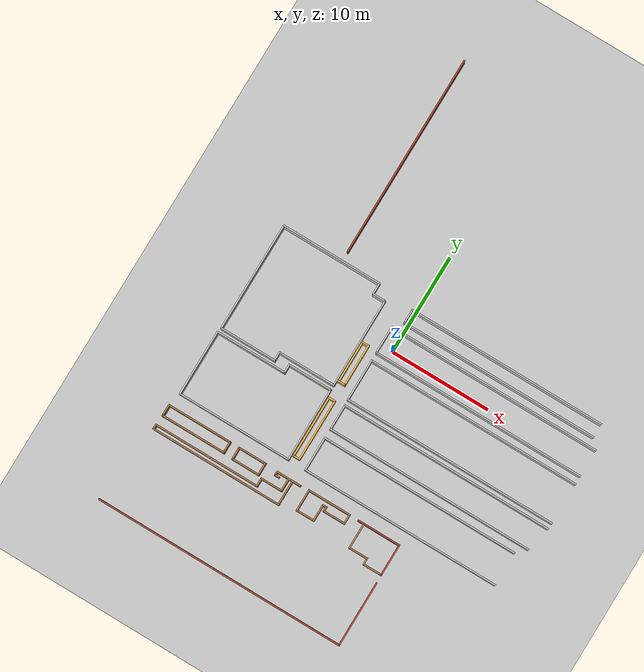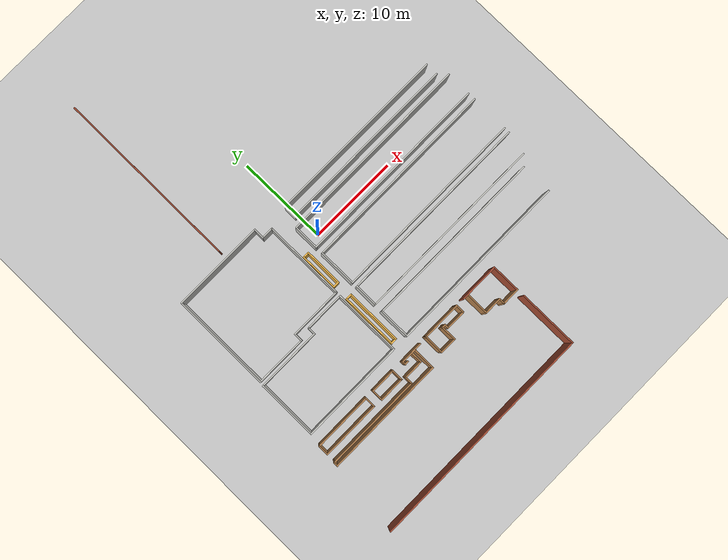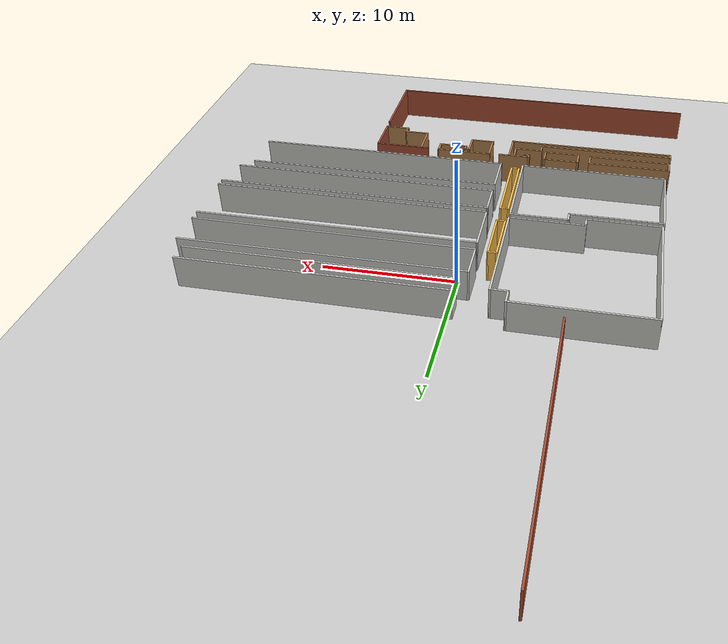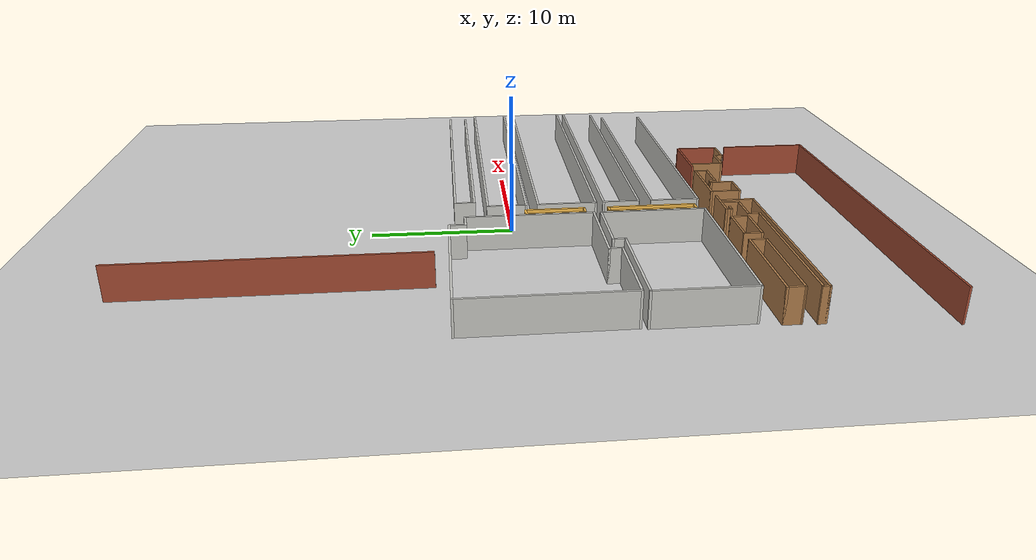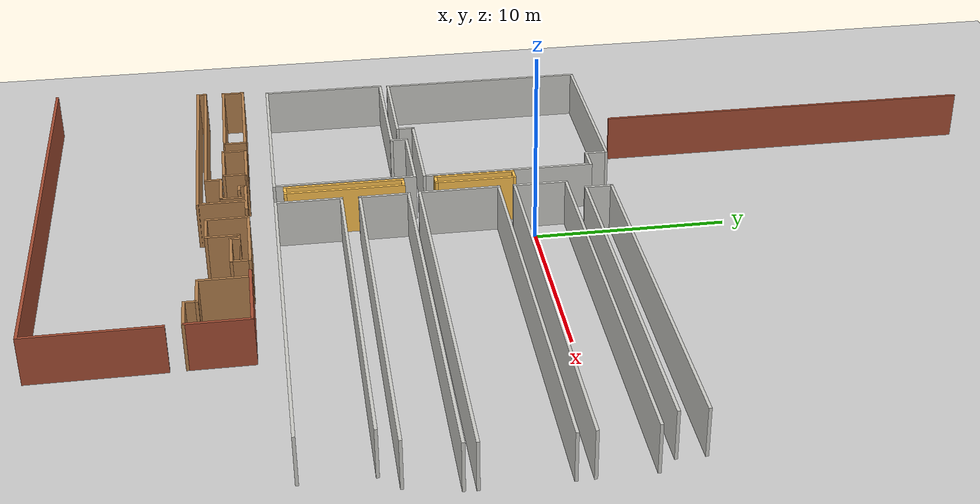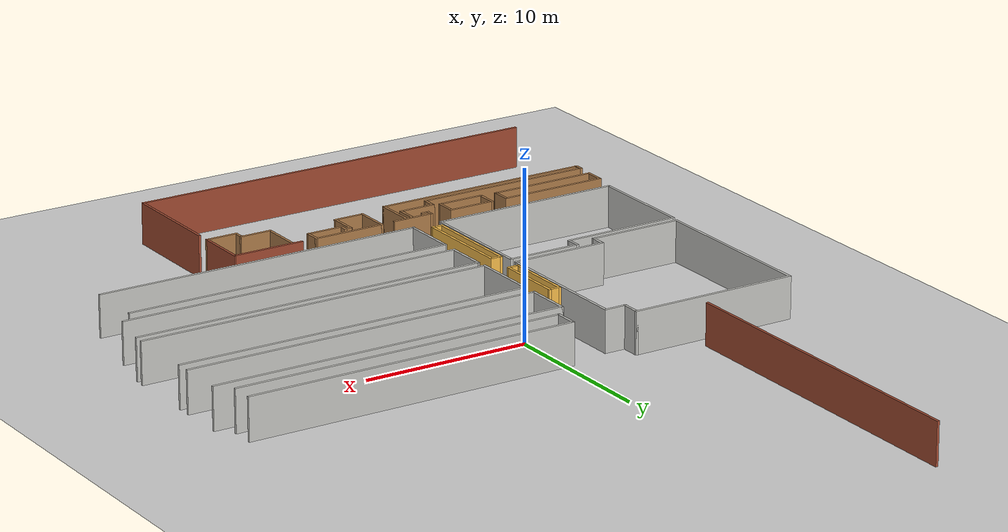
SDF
<sdf version="1.6">
 <world name="default">
  <model name="ground_plane">
   <static>1</static>
   <link name="link">
    <collision name="collision">
     <geometry><plane><normal>0 0 1</normal><size>100 100</size></plane></geometry>
     <surface><friction><ode><mu>100</mu><mu2>50</mu2></ode></friction></surface>
    </collision>
    <visual name="visual">
     <cast_shadows>0</cast_shadows>
     <geometry><plane><normal>0 0 1</normal><size>100 100</size></plane></geometry>
     <material>
      <script><uri>file://media/materials/scripts/gazebo.material</uri><name>Gazebo/Grey</name></script>
     </material>
    </visual>
   </link>
  </model>
  <model name="jeonju-2023">
   <pose>-5.65351 1.61412 0 0 -0 0</pose>
   <link name="Wall_10">
    <collision name="Wall_10_Collision">
     <geometry><box><size>1.239 0.15 2.5</size></box></geometry>
     <pose>0 0 1.25 0 -0 0</pose>
    </collision>
    <visual name="Wall_10_Visual">
     <pose>0 0 1.25 0 -0 0</pose>
     <geometry><box><size>1.239 0.15 2.5</size></box></geometry>
     <material>
      <script><uri>file://media/materials/scripts/gazebo.material</uri><name>Gazebo/Wood</name></script>
      <ambient>1 1 1 1</ambient>
     </material>
    </visual>
    <pose>-2.5755 -16.763 0 0 0 -1.5708</pose>
   </link>
   <link name="Wall_110">
    <collision name="Wall_110_Collision">
     <geometry><box><size>20.25 0.15 2.5</size></box></geometry>
     <pose>0 0 1.25 0 -0 0</pose>
    </collision>
    <visual name="Wall_110_Visual">
     <pose>0 0 1.25 0 -0 0</pose>
     <geometry><box><size>20.25 0.15 2.5</size></box></geometry>
     <material>
      <script><uri>file://media/materials/scripts/gazebo.material</uri><name>Gazebo/Bricks</name></script>
      <ambient>1 1 1 1</ambient>
     </material>
    </visual>
    <pose>-2.4415 13.9915 0 0 0 -1.57229</pose>
   </link>
   <link name="Wall_13">
    <collision name="Wall_13_Collision">
     <geometry><box><size>1.25 0.15 2.5</size></box></geometry>
     <pose>0 0 1.25 0 -0 0</pose>
    </collision>
    <visual name="Wall_13_Visual">
     <pose>0 0 1.25 0 -0 0</pose>
     <geometry><box><size>1.25 0.15 2.5</size></box></geometry>
     <material>
      <script><uri>file://media/materials/scripts/gazebo.material</uri><name>Gazebo/Wood</name></script>
      <ambient>0.760784 0.662745 0.627451 1</ambient>
     </material>
    </visual>
    <pose>-8.9755 -16.7685 0 0 0 -1.5708</pose>
   </link>
   <link name="Wall_15">
    <collision name="Wall_15_Collision">
     <geometry><box><size>1.32513 0.15 2.5</size></box></geometry>
     <pose>0 0 1.25 0 -0 0</pose>
    </collision>
    <visual name="Wall_15_Visual">
     <pose>0 0 1.25 0 -0 0</pose>
     <geometry><box><size>1.32513 0.15 2.5</size></box></geometry>
     <material>
      <script><uri>file://media/materials/scripts/gazebo.material</uri><name>Gazebo/Wood</name></script>
      <ambient>1 1 1 1</ambient>
     </material>
    </visual>
    <pose>-1.6015 -16.807 0 0 -0 1.5708</pose>
   </link>
   <link name="Wall_16">
    <collision name="Wall_16_Collision">
     <geometry><box><size>2.876 0.15 2.5</size></box></geometry>
     <pose>0 0 1.25 0 -0 0</pose>
    </collision>
    <visual name="Wall_16_Visual">
     <pose>0 0 1.25 0 -0 0</pose>
     <geometry><box><size>2.876 0.15 2.5</size></box></geometry>
     <material>
      <script><uri>file://media/materials/scripts/gazebo.material</uri><name>Gazebo/Wood</name></script>
      <ambient>1 1 1 1</ambient>
     </material>
    </visual>
    <pose>-0.238501 -16.2195 0 0 -0 0</pose>
   </link>
   <link name="Wall_17">
    <collision name="Wall_17_Collision">
     <geometry><box><size>1.325 0.15 2.5</size></box></geometry>
     <pose>0 0 1.25 0 -0 0</pose>
    </collision>
    <visual name="Wall_17_Visual">
     <pose>0 0 1.25 0 -0 0</pose>
     <geometry><box><size>1.325 0.15 2.5</size></box></geometry>
     <material>
      <script><uri>file://media/materials/scripts/gazebo.material</uri><name>Gazebo/Wood</name></script>
      <ambient>1 1 1 1</ambient>
     </material>
    </visual>
    <pose>1.1245 -16.807 0 0 0 -1.5708</pose>
   </link>
   <link name="Wall_18">
    <collision name="Wall_18_Collision">
     <geometry><box><size>2.8764 0.15 2.5</size></box></geometry>
     <pose>0 0 1.25 0 -0 0</pose>
    </collision>
    <visual name="Wall_18_Visual">
     <pose>0 0 1.25 0 -0 0</pose>
     <geometry><box><size>2.8764 0.15 2.5</size></box></geometry>
     <material>
      <script><uri>file://media/materials/scripts/gazebo.material</uri><name>Gazebo/Wood</name></script>
      <ambient>1 1 1 1</ambient>
     </material>
    </visual>
    <pose>-0.238501 -17.3945 0 0 -0 3.14159</pose>
   </link>
   <link name="Wall_20">
    <collision name="Wall_20_Collision">
     <geometry><box><size>0.514476 0.15 2.5</size></box></geometry>
     <pose>0 0 1.25 0 -0 0</pose>
    </collision>
    <visual name="Wall_20_Visual">
     <pose>0 0 1.25 0 -0 0</pose>
     <geometry><box><size>0.514476 0.15 2.5</size></box></geometry>
     <material>
      <script><uri>file://media/materials/scripts/gazebo.material</uri><name>Gazebo/Wood</name></script>
      <ambient>1 1 1 1</ambient>
     </material>
    </visual>
    <pose>2.6065 -16.6385 0 0 -0 3.14159</pose>
   </link>
   <link name="Wall_21">
    <collision name="Wall_21_Collision">
     <geometry><box><size>0.489513 0.15 2.5</size></box></geometry>
     <pose>0 0 1.25 0 -0 0</pose>
    </collision>
    <visual name="Wall_21_Visual">
     <pose>0 0 1.25 0 -0 0</pose>
     <geometry><box><size>0.489513 0.15 2.5</size></box></geometry>
     <material>
      <script><uri>file://media/materials/scripts/gazebo.material</uri><name>Gazebo/Wood</name></script>
      <ambient>1 1 1 1</ambient>
     </material>
    </visual>
    <pose>2.4245 -16.469 0 0 -0 1.5708</pose>
   </link>
   <link name="Wall_22">
    <collision name="Wall_22_Collision">
     <geometry><box><size>2.55 0.15 2.5</size></box></geometry>
     <pose>0 0 1.25 0 -0 0</pose>
    </collision>
    <visual name="Wall_22_Visual">
     <pose>0 0 1.25 0 -0 0</pose>
     <geometry><box><size>2.55 0.15 2.5</size></box></geometry>
     <material>
      <script><uri>file://media/materials/scripts/gazebo.material</uri><name>Gazebo/Wood</name></script>
      <ambient>1 1 1 1</ambient>
     </material>
    </visual>
    <pose>3.6245 -16.2995 0 0 -0 0</pose>
   </link>
   <link name="Wall_258">
    <collision name="Wall_258_Collision">
     <geometry><box><size>10.2054 0.15 2.5</size></box></geometry>
     <pose>0 0 1.25 0 -0 0</pose>
    </collision>
    <visual name="Wall_258_Visual">
     <pose>0 0 1.25 0 -0 0</pose>
     <geometry><box><size>10.2054 0.15 2.5</size></box></geometry>
     <material>
      <script><uri>file://media/materials/scripts/gazebo.material</uri><name>Gazebo/CeilingTiled</name></script>
      <ambient>0.921569 0.807843 0.615686 1</ambient>
     </material>
    </visual>
    <pose>-3.548 2.9225 0 0 -0 0</pose>
   </link>
   <link name="Wall_259">
    <collision name="Wall_259_Collision">
     <geometry><box><size>1.25 0.15 2.5</size></box></geometry>
     <pose>0 0 1.25 0 -0 0</pose>
    </collision>
    <visual name="Wall_259_Visual">
     <pose>0 0 1.25 0 -0 0</pose>
     <geometry><box><size>1.25 0.15 2.5</size></box></geometry>
     <material>
      <script><uri>file://media/materials/scripts/gazebo.material</uri><name>Gazebo/CeilingTiled</name></script>
      <ambient>0.921569 0.807843 0.615686 1</ambient>
     </material>
    </visual>
    <pose>1.4795 2.3725 0 0 0 -1.5708</pose>
   </link>
   <link name="Wall_26">
    <collision name="Wall_26_Collision">
     <geometry><box><size>1.75 0.15 2.5</size></box></geometry>
     <pose>0 0 1.25 0 -0 0</pose>
    </collision>
    <visual name="Wall_26_Visual">
     <pose>0 0 1.25 0 -0 0</pose>
     <geometry><box><size>1.75 0.15 2.5</size></box></geometry>
     <material>
      <script><uri>file://media/materials/scripts/gazebo.material</uri><name>Gazebo/Wood</name></script>
      <ambient>1 1 1 1</ambient>
     </material>
    </visual>
    <pose>7.4885 -17.5295 0 0 0 -1.5708</pose>
   </link>
   <link name="Wall_260">
    <collision name="Wall_260_Collision">
     <geometry><box><size>1.39456 0.15 2.5</size></box></geometry>
     <pose>0 0 1.25 0 -0 0</pose>
    </collision>
    <visual name="Wall_260_Visual">
     <pose>0 0 1.25 0 -0 0</pose>
     <geometry><box><size>1.39456 0.15 2.5</size></box></geometry>
     <material>
      <script><uri>file://media/materials/scripts/gazebo.material</uri><name>Gazebo/CeilingTiled</name></script>
      <ambient>0.921569 0.807843 0.615686 1</ambient>
     </material>
    </visual>
    <pose>2.102 1.8225 0 0 -0 0</pose>
   </link>
   <link name="Wall_261">
    <collision name="Wall_261_Collision">
     <geometry><box><size>9 0.15 2.5</size></box></geometry>
     <pose>0 0 1.25 0 -0 0</pose>
    </collision>
    <visual name="Wall_261_Visual">
     <pose>0 0 1.25 0 -0 0</pose>
     <geometry><box><size>9 0.15 2.5</size></box></geometry>
     <material>
      <script><uri>file://media/materials/scripts/gazebo.material</uri><name>Gazebo/CeilingTiled</name></script>
      <ambient>0.921569 0.807843 0.615686 1</ambient>
     </material>
    </visual>
    <pose>2.7245 -2.6025 0 0 0 -1.5708</pose>
   </link>
   <link name="Wall_262">
    <collision name="Wall_262_Collision">
     <geometry><box><size>5.85 0.15 2.5</size></box></geometry>
     <pose>0 0 1.25 0 -0 0</pose>
    </collision>
    <visual name="Wall_262_Visual">
     <pose>0 0 1.25 0 -0 0</pose>
     <geometry><box><size>5.85 0.15 2.5</size></box></geometry>
     <material>
      <script><uri>file://media/materials/scripts/gazebo.material</uri><name>Gazebo/CeilingTiled</name></script>
      <ambient>0.921569 0.807843 0.615686 1</ambient>
     </material>
    </visual>
    <pose>-0.125501 -7.0275 0 0 -0 3.14159</pose>
   </link>
   <link name="Wall_263">
    <collision name="Wall_263_Collision">
     <geometry><box><size>1 0.15 2.5</size></box></geometry>
     <pose>0 0 1.25 0 -0 0</pose>
    </collision>
    <visual name="Wall_263_Visual">
     <pose>0 0 1.25 0 -0 0</pose>
     <geometry><box><size>1 0.15 2.5</size></box></geometry>
     <material>
      <script><uri>file://media/materials/scripts/gazebo.material</uri><name>Gazebo/CeilingTiled</name></script>
      <ambient>0.921569 0.807843 0.615686 1</ambient>
     </material>
    </visual>
    <pose>-2.9755 -7.4525 0 0 0 -1.5708</pose>
   </link>
   <link name="Wall_264">
    <collision name="Wall_264_Collision">
     <geometry><box><size>5.75 0.15 2.5</size></box></geometry>
     <pose>0 0 1.25 0 -0 0</pose>
    </collision>
    <visual name="Wall_264_Visual">
     <pose>0 0 1.25 0 -0 0</pose>
     <geometry><box><size>5.75 0.15 2.5</size></box></geometry>
     <material>
      <script><uri>file://media/materials/scripts/gazebo.material</uri><name>Gazebo/CeilingTiled</name></script>
      <ambient>0.921569 0.807843 0.615686 1</ambient>
     </material>
    </visual>
    <pose>-5.7755 -7.8775 0 0 -0 3.14159</pose>
   </link>
   <link name="Wall_265">
    <collision name="Wall_265_Collision">
     <geometry><box><size>10.95 0.15 2.5</size></box></geometry>
     <pose>0 0 1.25 0 -0 0</pose>
    </collision>
    <visual name="Wall_265_Visual">
     <pose>0 0 1.25 0 -0 0</pose>
     <geometry><box><size>10.95 0.15 2.5</size></box></geometry>
     <material>
      <script><uri>file://media/materials/scripts/gazebo.material</uri><name>Gazebo/CeilingTiled</name></script>
      <ambient>0.921569 0.807843 0.615686 1</ambient>
     </material>
    </visual>
    <pose>-8.5755 -2.4775 0 0 -0 1.5708</pose>
   </link>
   <link name="Wall_267">
    <collision name="Wall_267_Collision">
     <geometry><box><size>0.775271 0.15 2.5</size></box></geometry>
     <pose>0 0 1.25 0 -0 0</pose>
    </collision>
    <visual name="Wall_267_Visual">
     <pose>0 0 1.25 0 -0 0</pose>
     <geometry><box><size>0.775271 0.15 2.5</size></box></geometry>
     <material>
      <script><uri>file://media/materials/scripts/gazebo.material</uri><name>Gazebo/Grey</name></script>
      <ambient>1 0.764706 0.305882 1</ambient>
     </material>
    </visual>
    <pose>3.237 -2.3845 0 0 -0 0</pose>
   </link>
   <link name="Wall_268">
    <collision name="Wall_268_Collision">
     <geometry><box><size>4.25 0.15 2.5</size></box></geometry>
     <pose>0 0 1.25 0 -0 0</pose>
    </collision>
    <visual name="Wall_268_Visual">
     <pose>0 0 1.25 0 -0 0</pose>
     <geometry><box><size>4.25 0.15 2.5</size></box></geometry>
     <material>
      <script><uri>file://media/materials/scripts/gazebo.material</uri><name>Gazebo/Grey</name></script>
      <ambient>1 0.764706 0.305882 1</ambient>
     </material>
    </visual>
    <pose>3.5495 -4.4345 0 0 0 -1.5708</pose>
   </link>
   <link name="Wall_269">
    <collision name="Wall_269_Collision">
     <geometry><box><size>0.775271 0.15 2.5</size></box></geometry>
     <pose>0 0 1.25 0 -0 0</pose>
    </collision>
    <visual name="Wall_269_Visual">
     <pose>0 0 1.25 0 -0 0</pose>
     <geometry><box><size>0.775271 0.15 2.5</size></box></geometry>
     <material>
      <script><uri>file://media/materials/scripts/gazebo.material</uri><name>Gazebo/Grey</name></script>
      <ambient>1 0.764706 0.305882 1</ambient>
     </material>
    </visual>
    <pose>3.237 -6.4845 0 0 -0 3.14159</pose>
   </link>
   <link name="Wall_27">
    <collision name="Wall_27_Collision">
     <geometry><box><size>1.91447 0.15 2.5</size></box></geometry>
     <pose>0 0 1.25 0 -0 0</pose>
    </collision>
    <visual name="Wall_27_Visual">
     <pose>0 0 1.25 0 -0 0</pose>
     <geometry><box><size>1.91447 0.15 2.5</size></box></geometry>
     <material>
      <script><uri>file://media/materials/scripts/gazebo.material</uri><name>Gazebo/Wood</name></script>
      <ambient>1 1 1 1</ambient>
     </material>
    </visual>
    <pose>6.6065 -18.3295 0 0 -0 3.14159</pose>
   </link>
   <link name="Wall_270">
    <collision name="Wall_270_Collision">
     <geometry><box><size>4.25006 0.15 2.5</size></box></geometry>
     <pose>0 0 1.25 0 -0 0</pose>
    </collision>
    <visual name="Wall_270_Visual">
     <pose>0 0 1.25 0 -0 0</pose>
     <geometry><box><size>4.25006 0.15 2.5</size></box></geometry>
     <material>
      <script><uri>file://media/materials/scripts/gazebo.material</uri><name>Gazebo/Grey</name></script>
      <ambient>1 0.764706 0.305882 1</ambient>
     </material>
    </visual>
    <pose>2.9245 -4.4345 0 0 -0 1.5708</pose>
   </link>
   <link name="Wall_272">
    <collision name="Wall_272_Collision">
     <geometry><box><size>7.17704 0.15 2.5</size></box></geometry>
     <pose>0 0 1.25 0 -0 0</pose>
    </collision>
    <visual name="Wall_272_Visual">
     <pose>0 0 1.25 0 -0 0</pose>
     <geometry><box><size>7.17704 0.15 2.5</size></box></geometry>
     <material>
      <script><uri>file://media/materials/scripts/gazebo.material</uri><name>Gazebo/CeilingTiled</name></script>
      <ambient>0.921569 0.807843 0.615686 1</ambient>
     </material>
    </visual>
    <pose>-5.162 -8.3365 0 0 -0 0</pose>
   </link>
   <link name="Wall_273">
    <collision name="Wall_273_Collision">
     <geometry><box><size>0.957222 0.15 2.5</size></box></geometry>
     <pose>0 0 1.25 0 -0 0</pose>
    </collision>
    <visual name="Wall_273_Visual">
     <pose>0 0 1.25 0 -0 0</pose>
     <geometry><box><size>0.957222 0.15 2.5</size></box></geometry>
     <material>
      <script><uri>file://media/materials/scripts/gazebo.material</uri><name>Gazebo/CeilingTiled</name></script>
      <ambient>0.921569 0.807843 0.615686 1</ambient>
     </material>
    </visual>
    <pose>-1.6485 -7.933 0 0 -0 1.5708</pose>
   </link>
   <link name="Wall_274">
    <collision name="Wall_274_Collision">
     <geometry><box><size>4.5 0.15 2.5</size></box></geometry>
     <pose>0 0 1.25 0 -0 0</pose>
    </collision>
    <visual name="Wall_274_Visual">
     <pose>0 0 1.25 0 -0 0</pose>
     <geometry><box><size>4.5 0.15 2.5</size></box></geometry>
     <material>
      <script><uri>file://media/materials/scripts/gazebo.material</uri><name>Gazebo/CeilingTiled</name></script>
      <ambient>0.921569 0.807843 0.615686 1</ambient>
     </material>
    </visual>
    <pose>0.526499 -7.5295 0 0 -0 0</pose>
   </link>
   <link name="Wall_275">
    <collision name="Wall_275_Collision">
     <geometry><box><size>7.45722 0.15 2.5</size></box></geometry>
     <pose>0 0 1.25 0 -0 0</pose>
    </collision>
    <visual name="Wall_275_Visual">
     <pose>0 0 1.25 0 -0 0</pose>
     <geometry><box><size>7.45722 0.15 2.5</size></box></geometry>
     <material>
      <script><uri>file://media/materials/scripts/gazebo.material</uri><name>Gazebo/CeilingTiled</name></script>
      <ambient>0.921569 0.807843 0.615686 1</ambient>
     </material>
    </visual>
    <pose>2.7015 -11.183 0 0 0 -1.5708</pose>
   </link>
   <link name="Wall_276">
    <collision name="Wall_276_Collision">
     <geometry><box><size>11.527 0.15 2.5</size></box></geometry>
     <pose>0 0 1.25 0 -0 0</pose>
    </collision>
    <visual name="Wall_276_Visual">
     <pose>0 0 1.25 0 -0 0</pose>
     <geometry><box><size>11.527 0.15 2.5</size></box></geometry>
     <material>
      <script><uri>file://media/materials/scripts/gazebo.material</uri><name>Gazebo/CeilingTiled</name></script>
      <ambient>0.921569 0.807843 0.615686 1</ambient>
     </material>
    </visual>
    <pose>-2.987 -14.8365 0 0 -0 3.14159</pose>
   </link>
   <link name="Wall_277">
    <collision name="Wall_277_Collision">
     <geometry><box><size>6.65077 0.15 2.5</size></box></geometry>
     <pose>0 0 1.25 0 -0 0</pose>
    </collision>
    <visual name="Wall_277_Visual">
     <pose>0 0 1.25 0 -0 0</pose>
     <geometry><box><size>6.65077 0.15 2.5</size></box></geometry>
     <material>
      <script><uri>file://media/materials/scripts/gazebo.material</uri><name>Gazebo/CeilingTiled</name></script>
      <ambient>0.921569 0.807843 0.615686 1</ambient>
     </material>
    </visual>
    <pose>-8.6755 -11.5865 0 0 -0 1.5708</pose>
   </link>
   <link name="Wall_279">
    <collision name="Wall_279_Collision">
     <geometry><box><size>0.75 0.15 2.5</size></box></geometry>
     <pose>0 0 1.25 0 -0 0</pose>
    </collision>
    <visual name="Wall_279_Visual">
     <pose>0 0 1.25 0 -0 0</pose>
     <geometry><box><size>0.75 0.15 2.5</size></box></geometry>
     <material>
      <script><uri>file://media/materials/scripts/gazebo.material</uri><name>Gazebo/Grey</name></script>
      <ambient>1 0.764706 0.305882 1</ambient>
     </material>
    </visual>
    <pose>3.2465 -8.1995 0 0 -0 0</pose>
   </link>
   <link name="Wall_28">
    <collision name="Wall_28_Collision">
     <geometry><box><size>2.25 0.15 2.5</size></box></geometry>
     <pose>0 0 1.25 0 -0 0</pose>
    </collision>
    <visual name="Wall_28_Visual">
     <pose>0 0 1.25 0 -0 0</pose>
     <geometry><box><size>2.25 0.15 2.5</size></box></geometry>
     <material>
      <script><uri>file://media/materials/scripts/gazebo.material</uri><name>Gazebo/Wood</name></script>
      <ambient>1 1 1 1</ambient>
     </material>
    </visual>
    <pose>5.7245 -17.2795 0 0 -0 1.5708</pose>
   </link>
   <link name="Wall_280">
    <collision name="Wall_280_Collision">
     <geometry><box><size>6.25 0.15 2.5</size></box></geometry>
     <pose>0 0 1.25 0 -0 0</pose>
    </collision>
    <visual name="Wall_280_Visual">
     <pose>0 0 1.25 0 -0 0</pose>
     <geometry><box><size>6.25 0.15 2.5</size></box></geometry>
     <material>
      <script><uri>file://media/materials/scripts/gazebo.material</uri><name>Gazebo/Grey</name></script>
      <ambient>1 0.764706 0.305882 1</ambient>
     </material>
    </visual>
    <pose>3.5465 -11.2495 0 0 0 -1.5708</pose>
   </link>
   <link name="Wall_281">
    <collision name="Wall_281_Collision">
     <geometry><box><size>0.75 0.15 2.5</size></box></geometry>
     <pose>0 0 1.25 0 -0 0</pose>
    </collision>
    <visual name="Wall_281_Visual">
     <pose>0 0 1.25 0 -0 0</pose>
     <geometry><box><size>0.75 0.15 2.5</size></box></geometry>
     <material>
      <script><uri>file://media/materials/scripts/gazebo.material</uri><name>Gazebo/Grey</name></script>
      <ambient>1 0.764706 0.305882 1</ambient>
     </material>
    </visual>
    <pose>3.2465 -14.2995 0 0 -0 3.14159</pose>
   </link>
   <link name="Wall_282">
    <collision name="Wall_282_Collision">
     <geometry><box><size>6.25 0.15 2.5</size></box></geometry>
     <pose>0 0 1.25 0 -0 0</pose>
    </collision>
    <visual name="Wall_282_Visual">
     <pose>0 0 1.25 0 -0 0</pose>
     <geometry><box><size>6.25 0.15 2.5</size></box></geometry>
     <material>
      <script><uri>file://media/materials/scripts/gazebo.material</uri><name>Gazebo/Grey</name></script>
      <ambient>1 0.764706 0.305882 1</ambient>
     </material>
    </visual>
    <pose>2.9465 -11.2495 0 0 -0 1.5708</pose>
   </link>
   <link name="Wall_29">
    <collision name="Wall_29_Collision">
     <geometry><box><size>4.39921 0.15 2.5</size></box></geometry>
     <pose>0 0 1.25 0 -0 0</pose>
    </collision>
    <visual name="Wall_29_Visual">
     <pose>0 0 1.25 0 -0 0</pose>
     <geometry><box><size>4.39921 0.15 2.5</size></box></geometry>
     <material>
      <script><uri>file://media/materials/scripts/gazebo.material</uri><name>Gazebo/Wood</name></script>
      <ambient>1 1 1 1</ambient>
     </material>
    </visual>
    <pose>7.849 -16.2295 0 0 -0 0</pose>
   </link>
   <link name="Wall_294">
    <collision name="Wall_294_Collision">
     <geometry><box><size>19.9378 0.15 2.5</size></box></geometry>
     <pose>0 0 1.25 0 -0 0</pose>
    </collision>
    <visual name="Wall_294_Visual">
     <pose>0 0 1.25 0 -0 0</pose>
     <geometry><box><size>19.9378 0.15 2.5</size></box></geometry>
     <material>
      <script><uri>file://media/materials/scripts/gazebo.material</uri><name>Gazebo/CeilingTiled</name></script>
      <ambient>0.435294 0.796078 0.67451 1</ambient>
     </material>
    </visual>
    <pose>15.1305 2.4265 0 0 -0 0</pose>
   </link>
   <link name="Wall_296">
    <collision name="Wall_296_Collision">
     <geometry><box><size>19.9378 0.15 2.5</size></box></geometry>
     <pose>0 0 1.25 0 -0 0</pose>
    </collision>
    <visual name="Wall_296_Visual">
     <pose>0 0 1.25 0 -0 0</pose>
     <geometry><box><size>19.9378 0.15 2.5</size></box></geometry>
     <material>
      <script><uri>file://media/materials/scripts/gazebo.material</uri><name>Gazebo/CeilingTiled</name></script>
      <ambient>0.435294 0.796078 0.67451 1</ambient>
     </material>
    </visual>
    <pose>15.1305 1.0765 0 0 -0 3.14159</pose>
   </link>
   <link name="Wall_297">
    <collision name="Wall_297_Collision">
     <geometry><box><size>1.5 0.15 2.5</size></box></geometry>
     <pose>0 0 1.25 0 -0 0</pose>
    </collision>
    <visual name="Wall_297_Visual">
     <pose>0 0 1.25 0 -0 0</pose>
     <geometry><box><size>1.5 0.15 2.5</size></box></geometry>
     <material>
      <script><uri>file://media/materials/scripts/gazebo.material</uri><name>Gazebo/CeilingTiled</name></script>
      <ambient>0.435294 0.796078 0.67451 1</ambient>
     </material>
    </visual>
    <pose>5.2365 1.7515 0 0 -0 1.5708</pose>
   </link>
   <link name="Wall_299">
    <collision name="Wall_299_Collision">
     <geometry><box><size>21.504 0.15 2.5</size></box></geometry>
     <pose>0 0 1.25 0 -0 0</pose>
    </collision>
    <visual name="Wall_299_Visual">
     <pose>0 0 1.25 0 -0 0</pose>
     <geometry><box><size>21.504 0.15 2.5</size></box></geometry>
     <material>
      <script><uri>file://media/materials/scripts/gazebo.material</uri><name>Gazebo/CeilingTiled</name></script>
      <ambient>0.435294 0.796078 0.67451 1</ambient>
     </material>
    </visual>
    <pose>15.1475 0.1735 0 0 -0 0</pose>
   </link>
   <link name="Wall_30">
    <collision name="Wall_30_Collision">
     <geometry><box><size>1.05 0.15 2.5</size></box></geometry>
     <pose>0 0 1.25 0 -0 0</pose>
    </collision>
    <visual name="Wall_30_Visual">
     <pose>0 0 1.25 0 -0 0</pose>
     <geometry><box><size>1.05 0.15 2.5</size></box></geometry>
     <material>
      <script><uri>file://media/materials/scripts/gazebo.material</uri><name>Gazebo/Wood</name></script>
      <ambient>1 1 1 1</ambient>
     </material>
    </visual>
    <pose>9.9735 -16.6795 0 0 0 -1.5708</pose>
   </link>
   <link name="Wall_301">
    <collision name="Wall_301_Collision">
     <geometry><box><size>21.504 0.15 2.5</size></box></geometry>
     <pose>0 0 1.25 0 -0 0</pose>
    </collision>
    <visual name="Wall_301_Visual">
     <pose>0 0 1.25 0 -0 0</pose>
     <geometry><box><size>21.504 0.15 2.5</size></box></geometry>
     <material>
      <script><uri>file://media/materials/scripts/gazebo.material</uri><name>Gazebo/CeilingTiled</name></script>
      <ambient>0.435294 0.796078 0.67451 1</ambient>
     </material>
    </visual>
    <pose>15.1475 -2.5295 0 0 -0 3.14159</pose>
   </link>
   <link name="Wall_302">
    <collision name="Wall_302_Collision">
     <geometry><box><size>2.853 0.15 2.5</size></box></geometry>
     <pose>0 0 1.25 0 -0 0</pose>
    </collision>
    <visual name="Wall_302_Visual">
     <pose>0 0 1.25 0 -0 0</pose>
     <geometry><box><size>2.853 0.15 2.5</size></box></geometry>
     <material>
      <script><uri>file://media/materials/scripts/gazebo.material</uri><name>Gazebo/CeilingTiled</name></script>
      <ambient>0.435294 0.796078 0.67451 1</ambient>
     </material>
    </visual>
    <pose>4.4705 -1.178 0 0 -0 1.5708</pose>
   </link>
   <link name="Wall_304">
    <collision name="Wall_304_Collision">
     <geometry><box><size>21.5 0.15 2.5</size></box></geometry>
     <pose>0 0 1.25 0 -0 0</pose>
    </collision>
    <visual name="Wall_304_Visual">
     <pose>0 0 1.25 0 -0 0</pose>
     <geometry><box><size>21.5 0.15 2.5</size></box></geometry>
     <material>
      <script><uri>file://media/materials/scripts/gazebo.material</uri><name>Gazebo/CeilingTiled</name></script>
      <ambient>0.435294 0.796078 0.67451 1</ambient>
     </material>
    </visual>
    <pose>15.1555 -3.3655 0 0 -0 0</pose>
   </link>
   <link name="Wall_306">
    <collision name="Wall_306_Collision">
     <geometry><box><size>21.5 0.15 2.5</size></box></geometry>
     <pose>0 0 1.25 0 -0 0</pose>
    </collision>
    <visual name="Wall_306_Visual">
     <pose>0 0 1.25 0 -0 0</pose>
     <geometry><box><size>21.5 0.15 2.5</size></box></geometry>
     <material>
      <script><uri>file://media/materials/scripts/gazebo.material</uri><name>Gazebo/CeilingTiled</name></script>
      <ambient>0.435294 0.796078 0.67451 1</ambient>
     </material>
    </visual>
    <pose>15.1555 -7.4655 0 0 -0 3.14159</pose>
   </link>
   <link name="Wall_307">
    <collision name="Wall_307_Collision">
     <geometry><box><size>4.25 0.15 2.5</size></box></geometry>
     <pose>0 0 1.25 0 -0 0</pose>
    </collision>
    <visual name="Wall_307_Visual">
     <pose>0 0 1.25 0 -0 0</pose>
     <geometry><box><size>4.25 0.15 2.5</size></box></geometry>
     <material>
      <script><uri>file://media/materials/scripts/gazebo.material</uri><name>Gazebo/CeilingTiled</name></script>
      <ambient>0.435294 0.796078 0.67451 1</ambient>
     </material>
    </visual>
    <pose>4.4805 -5.4155 0 0 -0 1.5708</pose>
   </link>
   <link name="Wall_309">
    <collision name="Wall_309_Collision">
     <geometry><box><size>21.4144 0.15 2.5</size></box></geometry>
     <pose>0 0 1.25 0 -0 0</pose>
    </collision>
    <visual name="Wall_309_Visual">
     <pose>0 0 1.25 0 -0 0</pose>
     <geometry><box><size>21.4144 0.15 2.5</size></box></geometry>
     <material>
      <script><uri>file://media/materials/scripts/gazebo.material</uri><name>Gazebo/CeilingTiled</name></script>
      <ambient>0.435294 0.796078 0.67451 1</ambient>
     </material>
    </visual>
    <pose>15.1565 -8.054 0 0 0 -0.001082</pose>
   </link>
   <link name="Wall_31">
    <collision name="Wall_31_Collision">
     <geometry><box><size>2.299 0.15 2.5</size></box></geometry>
     <pose>0 0 1.25 0 -0 0</pose>
    </collision>
    <visual name="Wall_31_Visual">
     <pose>0 0 1.25 0 -0 0</pose>
     <geometry><box><size>2.299 0.15 2.5</size></box></geometry>
     <material>
      <script><uri>file://media/materials/scripts/gazebo.material</uri><name>Gazebo/Wood</name></script>
      <ambient>1 1 1 1</ambient>
     </material>
    </visual>
    <pose>8.899 -17.1295 0 0 -0 3.14159</pose>
   </link>
   <link name="Wall_313">
    <collision name="Wall_313_Collision">
     <geometry><box><size>20.873 0.15 2.5</size></box></geometry>
     <pose>0 0 1.25 0 -0 0</pose>
    </collision>
    <visual name="Wall_313_Visual">
     <pose>0 0 1.25 0 -0 0</pose>
     <geometry><box><size>20.873 0.15 2.5</size></box></geometry>
     <material>
      <script><uri>file://media/materials/scripts/gazebo.material</uri><name>Gazebo/CeilingTiled</name></script>
      <ambient>0.435294 0.796078 0.67451 1</ambient>
     </material>
    </visual>
    <pose>14.886 -10.554 0 0 -0 3.14048</pose>
   </link>
   <link name="Wall_314">
    <collision name="Wall_314_Collision">
     <geometry><box><size>2.65 0.15 2.5</size></box></geometry>
     <pose>0 0 1.25 0 -0 0</pose>
    </collision>
    <visual name="Wall_314_Visual">
     <pose>0 0 1.25 0 -0 0</pose>
     <geometry><box><size>2.65 0.15 2.5</size></box></geometry>
     <material>
      <script><uri>file://media/materials/scripts/gazebo.material</uri><name>Gazebo/CeilingTiled</name></script>
      <ambient>0.435294 0.796078 0.67451 1</ambient>
     </material>
    </visual>
    <pose>4.5245 -9.2925 0 0 -0 1.5708</pose>
   </link>
   <link name="Wall_316">
    <collision name="Wall_316_Collision">
     <geometry><box><size>20 0.15 2.5</size></box></geometry>
     <pose>0 0 1.25 0 -0 0</pose>
    </collision>
    <visual name="Wall_316_Visual">
     <pose>0 0 1.25 0 -0 0</pose>
     <geometry><box><size>20 0.15 2.5</size></box></geometry>
     <material>
      <script><uri>file://media/materials/scripts/gazebo.material</uri><name>Gazebo/CeilingTiled</name></script>
      <ambient>0.435294 0.796078 0.67451 1</ambient>
     </material>
    </visual>
    <pose>14.4245 -11.4845 0 0 -0 0</pose>
   </link>
   <link name="Wall_318">
    <collision name="Wall_318_Collision">
     <geometry><box><size>20 0.15 2.5</size></box></geometry>
     <pose>0 0 1.25 0 -0 0</pose>
    </collision>
    <visual name="Wall_318_Visual">
     <pose>0 0 1.25 0 -0 0</pose>
     <geometry><box><size>20 0.15 2.5</size></box></geometry>
     <material>
      <script><uri>file://media/materials/scripts/gazebo.material</uri><name>Gazebo/CeilingTiled</name></script>
      <ambient>0.435294 0.796078 0.67451 1</ambient>
     </material>
    </visual>
    <pose>14.4245 -14.8345 0 0 -0 3.14159</pose>
   </link>
   <link name="Wall_319">
    <collision name="Wall_319_Collision">
     <geometry><box><size>3.5 0.15 2.5</size></box></geometry>
     <pose>0 0 1.25 0 -0 0</pose>
    </collision>
    <visual name="Wall_319_Visual">
     <pose>0 0 1.25 0 -0 0</pose>
     <geometry><box><size>3.5 0.15 2.5</size></box></geometry>
     <material>
      <script><uri>file://media/materials/scripts/gazebo.material</uri><name>Gazebo/CeilingTiled</name></script>
      <ambient>0.435294 0.796078 0.67451 1</ambient>
     </material>
    </visual>
    <pose>4.4995 -13.1595 0 0 -0 1.5708</pose>
   </link>
   <link name="Wall_35">
    <collision name="Wall_35_Collision">
     <geometry><box><size>0.55 0.15 2.5</size></box></geometry>
     <pose>0 0 1.25 0 -0 0</pose>
    </collision>
    <visual name="Wall_35_Visual">
     <pose>0 0 1.25 0 -0 0</pose>
     <geometry><box><size>0.55 0.15 2.5</size></box></geometry>
     <material>
      <script><uri>file://media/materials/scripts/gazebo.material</uri><name>Gazebo/Wood</name></script>
      <ambient>1 1 1 1</ambient>
     </material>
    </visual>
    <pose>7.8245 -16.9295 0 0 -0 1.5708</pose>
   </link>
   <link name="Wall_36">
    <collision name="Wall_36_Collision">
     <geometry><box><size>0.486 0.15 2.5</size></box></geometry>
     <pose>0 0 1.25 0 -0 0</pose>
    </collision>
    <visual name="Wall_36_Visual">
     <pose>0 0 1.25 0 -0 0</pose>
     <geometry><box><size>0.486 0.15 2.5</size></box></geometry>
     <material>
      <script><uri>file://media/materials/scripts/gazebo.material</uri><name>Gazebo/Wood</name></script>
      <ambient>1 1 1 1</ambient>
     </material>
    </visual>
    <pose>7.6565 -16.7295 0 0 -0 3.14159</pose>
   </link>
   <link name="Wall_38">
    <collision name="Wall_38_Collision">
     <geometry><box><size>4.4197 0.15 2.5</size></box></geometry>
     <pose>0 0 1.25 0 -0 0</pose>
    </collision>
    <visual name="Wall_38_Visual">
     <pose>0 0 1.25 0 -0 0</pose>
     <geometry><box><size>4.4197 0.15 2.5</size></box></geometry>
     <material>
      <script><uri>file://media/materials/scripts/gazebo.material</uri><name>Gazebo/Bricks</name></script>
      <ambient>1 1 1 1</ambient>
     </material>
    </visual>
    <pose>13.0595 -16.2505 0 0 -0 0</pose>
   </link>
   <link name="Wall_39">
    <collision name="Wall_39_Collision">
     <geometry><box><size>3.25 0.15 2.5</size></box></geometry>
     <pose>0 0 1.25 0 -0 0</pose>
    </collision>
    <visual name="Wall_39_Visual">
     <pose>0 0 1.25 0 -0 0</pose>
     <geometry><box><size>3.25 0.15 2.5</size></box></geometry>
     <material>
      <script><uri>file://media/materials/scripts/gazebo.material</uri><name>Gazebo/Bricks</name></script>
      <ambient>1 1 1 1</ambient>
     </material>
    </visual>
    <pose>15.1945 -17.8005 0 0 0 -1.5708</pose>
   </link>
   <link name="Wall_40">
    <collision name="Wall_40_Collision">
     <geometry><box><size>2 0.15 2.5</size></box></geometry>
     <pose>0 0 1.25 0 -0 0</pose>
    </collision>
    <visual name="Wall_40_Visual">
     <pose>0 0 1.25 0 -0 0</pose>
     <geometry><box><size>2 0.15 2.5</size></box></geometry>
     <material>
      <script><uri>file://media/materials/scripts/gazebo.material</uri><name>Gazebo/Wood</name></script>
      <ambient>1 1 1 1</ambient>
     </material>
    </visual>
    <pose>14.2695 -19.3505 0 0 -0 3.14159</pose>
   </link>
   <link name="Wall_41">
    <collision name="Wall_41_Collision">
     <geometry><box><size>0.75 0.15 2.5</size></box></geometry>
     <pose>0 0 1.25 0 -0 0</pose>
    </collision>
    <visual name="Wall_41_Visual">
     <pose>0 0 1.25 0 -0 0</pose>
     <geometry><box><size>0.75 0.15 2.5</size></box></geometry>
     <material>
      <script><uri>file://media/materials/scripts/gazebo.material</uri><name>Gazebo/Wood</name></script>
      <ambient>1 1 1 1</ambient>
     </material>
    </visual>
    <pose>13.3445 -19.0505 0 0 -0 1.5708</pose>
   </link>
   <link name="Wall_42">
    <collision name="Wall_42_Collision">
     <geometry><box><size>2 0.15 2.5</size></box></geometry>
     <pose>0 0 1.25 0 -0 0</pose>
    </collision>
    <visual name="Wall_42_Visual">
     <pose>0 0 1.25 0 -0 0</pose>
     <geometry><box><size>2 0.15 2.5</size></box></geometry>
     <material>
      <script><uri>file://media/materials/scripts/gazebo.material</uri><name>Gazebo/Wood</name></script>
      <ambient>1 1 1 1</ambient>
     </material>
    </visual>
    <pose>12.4195 -18.7505 0 0 -0 3.14159</pose>
   </link>
   <link name="Wall_43">
    <collision name="Wall_43_Collision">
     <geometry><box><size>2.5 0.15 2.5</size></box></geometry>
     <pose>0 0 1.25 0 -0 0</pose>
    </collision>
    <visual name="Wall_43_Visual">
     <pose>0 0 1.25 0 -0 0</pose>
     <geometry><box><size>2.5 0.15 2.5</size></box></geometry>
     <material>
      <script><uri>file://media/materials/scripts/gazebo.material</uri><name>Gazebo/Wood</name></script>
      <ambient>1 1 1 1</ambient>
     </material>
    </visual>
    <pose>11.4945 -17.5755 0 0 -0 1.5708</pose>
   </link>
   <link name="Wall_493">
    <collision name="Wall_493_Collision">
     <geometry><box><size>13.25 0.15 2.5</size></box></geometry>
     <pose>0 0 1.25 0 -0 0</pose>
    </collision>
    <visual name="Wall_493_Visual">
     <pose>0 0 1.25 0 -0 0</pose>
     <geometry><box><size>13.25 0.15 2.5</size></box></geometry>
     <material>
      <script><uri>file://media/materials/scripts/gazebo.material</uri><name>Gazebo/Wood</name></script>
      <ambient>1 1 1 1</ambient>
     </material>
    </visual>
    <pose>-2.5125 -18.7485 0 0 -0 0</pose>
   </link>
   <link name="Wall_494">
    <collision name="Wall_494_Collision">
     <geometry><box><size>2.5 0.15 2.5</size></box></geometry>
     <pose>0 0 1.25 0 -0 0</pose>
    </collision>
    <visual name="Wall_494_Visual">
     <pose>0 0 1.25 0 -0 0</pose>
     <geometry><box><size>2.5 0.15 2.5</size></box></geometry>
     <material>
      <script><uri>file://media/materials/scripts/gazebo.material</uri><name>Gazebo/Wood</name></script>
      <ambient>1 1 1 1</ambient>
     </material>
    </visual>
    <pose>4.0375 -17.5735 0 0 -0 1.5708</pose>
   </link>
   <link name="Wall_496">
    <collision name="Wall_496_Collision">
     <geometry><box><size>0.569201 0.15 2.5</size></box></geometry>
     <pose>0 0 1.25 0 -0 0</pose>
    </collision>
    <visual name="Wall_496_Visual">
     <pose>0 0 1.25 0 -0 0</pose>
     <geometry><box><size>0.569201 0.15 2.5</size></box></geometry>
     <material>
      <script><uri>file://media/materials/scripts/gazebo.material</uri><name>Gazebo/Wood</name></script>
      <ambient>1 1 1 1</ambient>
     </material>
    </visual>
    <pose>-9.0625 -18.539 0 0 -0 1.5708</pose>
   </link>
   <link name="Wall_497">
    <collision name="Wall_497_Collision">
     <geometry><box><size>10.75 0.15 2.5</size></box></geometry>
     <pose>0 0 1.25 0 -0 0</pose>
    </collision>
    <visual name="Wall_497_Visual">
     <pose>0 0 1.25 0 -0 0</pose>
     <geometry><box><size>10.75 0.15 2.5</size></box></geometry>
     <material>
      <script><uri>file://media/materials/scripts/gazebo.material</uri><name>Gazebo/Wood</name></script>
      <ambient>1 1 1 1</ambient>
     </material>
    </visual>
    <pose>-3.7625 -18.3295 0 0 -0 0</pose>
   </link>
   <link name="Wall_498">
    <collision name="Wall_498_Collision">
     <geometry><box><size>0.930799 0.15 2.5</size></box></geometry>
     <pose>0 0 1.25 0 -0 0</pose>
    </collision>
    <visual name="Wall_498_Visual">
     <pose>0 0 1.25 0 -0 0</pose>
     <geometry><box><size>0.930799 0.15 2.5</size></box></geometry>
     <material>
      <script><uri>file://media/materials/scripts/gazebo.material</uri><name>Gazebo/Wood</name></script>
      <ambient>1 1 1 1</ambient>
     </material>
    </visual>
    <pose>1.5375 -17.939 0 0 -0 1.5708</pose>
   </link>
   <link name="Wall_499">
    <collision name="Wall_499_Collision">
     <geometry><box><size>2.25 0.15 2.5</size></box></geometry>
     <pose>0 0 1.25 0 -0 0</pose>
    </collision>
    <visual name="Wall_499_Visual">
     <pose>0 0 1.25 0 -0 0</pose>
     <geometry><box><size>2.25 0.15 2.5</size></box></geometry>
     <material>
      <script><uri>file://media/materials/scripts/gazebo.material</uri><name>Gazebo/Wood</name></script>
      <ambient>1 1 1 1</ambient>
     </material>
    </visual>
    <pose>2.5875 -17.5485 0 0 -0 0</pose>
   </link>
   <link name="Wall_500">
    <collision name="Wall_500_Collision">
     <geometry><box><size>1.25 0.15 2.5</size></box></geometry>
     <pose>0 0 1.25 0 -0 0</pose>
    </collision>
    <visual name="Wall_500_Visual">
     <pose>0 0 1.25 0 -0 0</pose>
     <geometry><box><size>1.25 0.15 2.5</size></box></geometry>
     <material>
      <script><uri>file://media/materials/scripts/gazebo.material</uri><name>Gazebo/Wood</name></script>
      <ambient>1 1 1 1</ambient>
     </material>
    </visual>
    <pose>3.6375 -16.9985 0 0 -0 1.5708</pose>
   </link>
   <link name="Wall_502">
    <collision name="Wall_502_Collision">
     <geometry><box><size>6.55001 0.15 2.5</size></box></geometry>
     <pose>0 0 1.25 0 -0 0</pose>
    </collision>
    <visual name="Wall_502_Visual">
     <pose>0 0 1.25 0 -0 0</pose>
     <geometry><box><size>6.55001 0.15 2.5</size></box></geometry>
     <material>
      <script><uri>file://media/materials/scripts/gazebo.material</uri><name>Gazebo/Wood</name></script>
      <ambient>1 1 1 1</ambient>
     </material>
    </visual>
    <pose>-5.7755 -17.313 0 0 -0 0.001719</pose>
   </link>
   <link name="Wall_6">
    <collision name="Wall_6_Collision">
     <geometry><box><size>25.286 0.15 2.5</size></box></geometry>
     <pose>0 0 1.25 0 -0 0</pose>
    </collision>
    <visual name="Wall_6_Visual">
     <pose>0 0 1.25 0 -0 0</pose>
     <geometry><box><size>25.286 0.15 2.5</size></box></geometry>
     <material>
      <script><uri>file://media/materials/scripts/gazebo.material</uri><name>Gazebo/Bricks</name></script>
      <ambient>0.921569 0.807843 0.615686 1</ambient>
     </material>
    </visual>
    <pose>2.6565 -26.6805 0 0 -0 0</pose>
   </link>
   <link name="Wall_7">
    <collision name="Wall_7_Collision">
     <geometry><box><size>6.601 0.15 2.5</size></box></geometry>
     <pose>0 0 1.25 0 -0 0</pose>
    </collision>
    <visual name="Wall_7_Visual">
     <pose>0 0 1.25 0 -0 0</pose>
     <geometry><box><size>6.601 0.15 2.5</size></box></geometry>
     <material>
      <script><uri>file://media/materials/scripts/gazebo.material</uri><name>Gazebo/Bricks</name></script>
      <ambient>0.921569 0.807843 0.615686 1</ambient>
     </material>
    </visual>
    <pose>15.2245 -23.455 0 0 -0 1.5708</pose>
   </link>
   <link name="Wall_9">
    <collision name="Wall_9_Collision">
     <geometry><box><size>6.55 0.15 2.5</size></box></geometry>
     <pose>0 0 1.25 0 -0 0</pose>
    </collision>
    <visual name="Wall_9_Visual">
     <pose>0 0 1.25 0 -0 0</pose>
     <geometry><box><size>6.55 0.15 2.5</size></box></geometry>
     <material>
      <script><uri>file://media/materials/scripts/gazebo.material</uri><name>Gazebo/Wood</name></script>
      <ambient>0.921569 0.807843 0.615686 1</ambient>
     </material>
    </visual>
    <pose>-5.7755 -16.2185 0 0 -0 0</pose>
   </link>
   <static>1</static>
  </model>
 </world>
</sdf>
